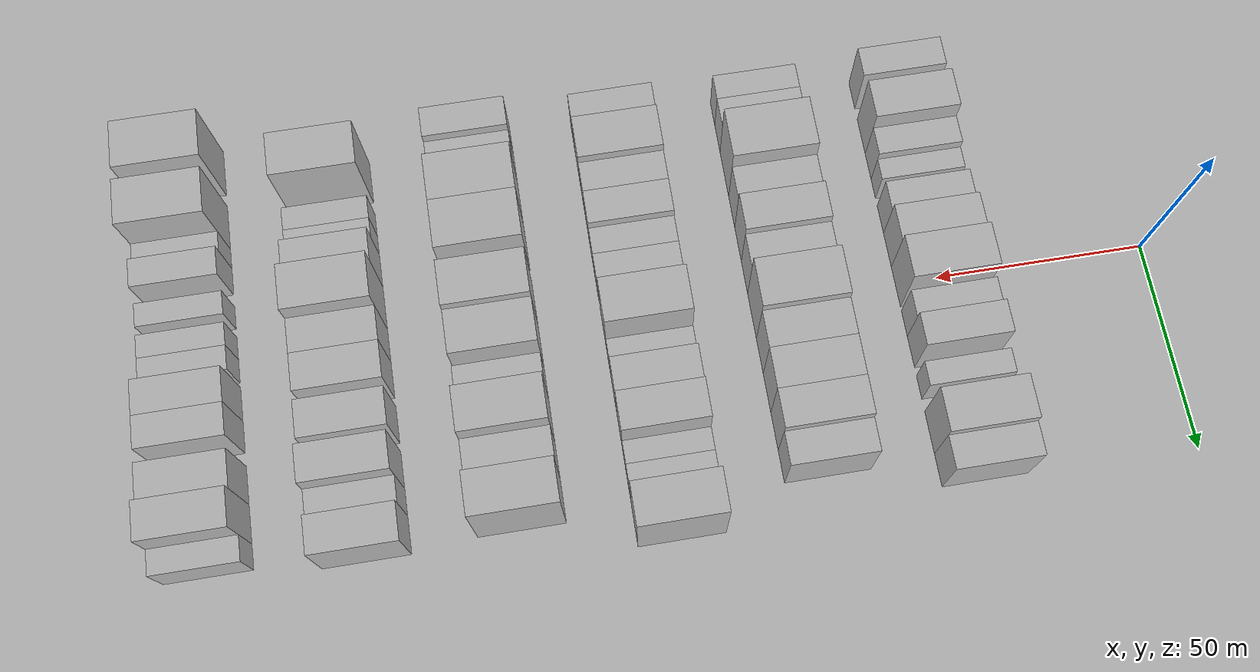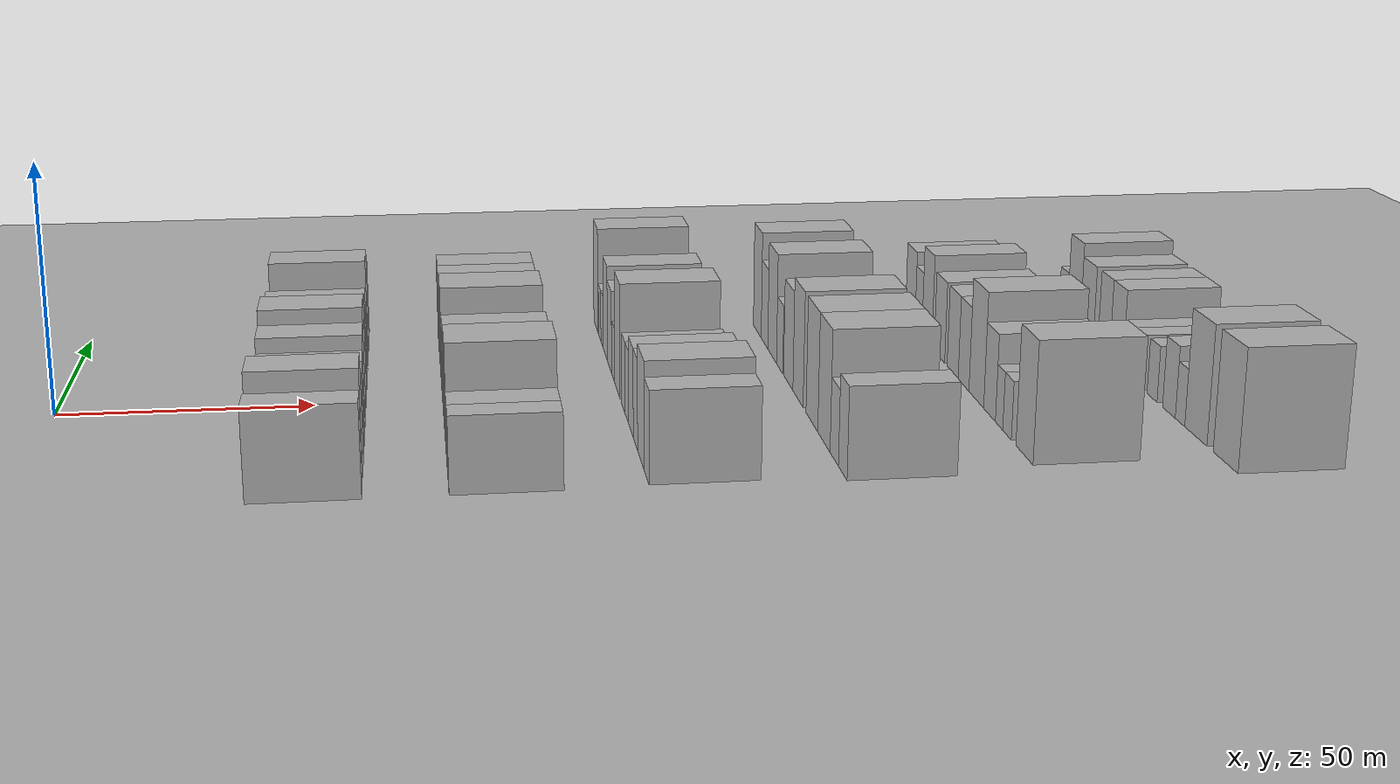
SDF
<sdf version="1.6">
 <world name="default">
  <include><name>ground_plane_1</name><uri>model://HANNAS_ground_plane</uri></include>
  <include>
   <name>ground_plane_2</name>
   <uri>model://HANNAS_ground_plane</uri>
   <pose>100 0 0  0 0 0</pose>
  </include>
  <model name="building_58">
   <static>1</static>
   <pose>50.0000 -50.3721 0 0.000000 0.000000 0.000000</pose>
   <link name="link">
    <pose>0 0 9.00 0 0 0</pose>
    <collision name="collision"><geometry><box><size>20.0000 7.2076 18.0000</size></box></geometry></collision>
    <visual name="visual">
     <cast_shadows>0</cast_shadows>
     <geometry><box><size>20.0000 7.2076 18.0000</size></box></geometry>
     <material>
      <script>
       <uri>model://HANNAS_wall/materials/scripts</uri>
       <uri>model://HANNAS_wall/materials/textures</uri>
       <name>vrc/HANNAS_wall</name>
      </script>
     </material>
    </visual>
   </link>
  </model>
  <model name="building_59">
   <static>1</static>
   <pose>50.0000 -39.0361 0 0.000000 0.000000 0.000000</pose>
   <link name="link">
    <pose>0 0 10.50 0 0 0</pose>
    <collision name="collision"><geometry><box><size>20.0000 9.4644 21.0000</size></box></geometry></collision>
    <visual name="visual">
     <cast_shadows>0</cast_shadows>
     <geometry><box><size>20.0000 9.4644 21.0000</size></box></geometry>
     <material>
      <script>
       <uri>model://HANNAS_wall/materials/scripts</uri>
       <uri>model://HANNAS_wall/materials/textures</uri>
       <name>vrc/HANNAS_wall</name>
      </script>
     </material>
    </visual>
   </link>
  </model>
  <model name="building_60">
   <static>1</static>
   <pose>50.0000 -30.9125 0 0.000000 0.000000 0.000000</pose>
   <link name="link">
    <pose>0 0 7.50 0 0 0</pose>
    <collision name="collision"><geometry><box><size>20.0000 6.7827 15.0000</size></box></geometry></collision>
    <visual name="visual">
     <cast_shadows>0</cast_shadows>
     <geometry><box><size>20.0000 6.7827 15.0000</size></box></geometry>
     <material>
      <script>
       <uri>model://HANNAS_wall/materials/scripts</uri>
       <uri>model://HANNAS_wall/materials/textures</uri>
       <name>vrc/HANNAS_wall</name>
      </script>
     </material>
    </visual>
   </link>
  </model>
  <model name="building_61">
   <static>1</static>
   <pose>50.0000 -24.9444 0 0.000000 0.000000 0.000000</pose>
   <link name="link">
    <pose>0 0 6.00 0 0 0</pose>
    <collision name="collision"><geometry><box><size>20.0000 5.1536 12.0000</size></box></geometry></collision>
    <visual name="visual">
     <cast_shadows>0</cast_shadows>
     <geometry><box><size>20.0000 5.1536 12.0000</size></box></geometry>
     <material>
      <script>
       <uri>model://HANNAS_wall/materials/scripts</uri>
       <uri>model://HANNAS_wall/materials/textures</uri>
       <name>vrc/HANNAS_wall</name>
      </script>
     </material>
    </visual>
   </link>
  </model>
  <model name="building_62">
   <static>1</static>
   <pose>50.0000 -16.7587 0 0.000000 0.000000 0.000000</pose>
   <link name="link">
    <pose>0 0 7.50 0 0 0</pose>
    <collision name="collision"><geometry><box><size>20.0000 7.2178 15.0000</size></box></geometry></collision>
    <visual name="visual">
     <cast_shadows>0</cast_shadows>
     <geometry><box><size>20.0000 7.2178 15.0000</size></box></geometry>
     <material>
      <script>
       <uri>model://HANNAS_wall/materials/scripts</uri>
       <uri>model://HANNAS_wall/materials/textures</uri>
       <name>vrc/HANNAS_wall</name>
      </script>
     </material>
    </visual>
   </link>
  </model>
  <model name="building_63">
   <static>1</static>
   <pose>50.0000 -8.7578 0 0.000000 0.000000 0.000000</pose>
   <link name="link">
    <pose>0 0 9.00 0 0 0</pose>
    <collision name="collision"><geometry><box><size>20.0000 8.7841 18.0000</size></box></geometry></collision>
    <visual name="visual">
     <cast_shadows>0</cast_shadows>
     <geometry><box><size>20.0000 8.7841 18.0000</size></box></geometry>
     <material>
      <script>
       <uri>model://HANNAS_wall/materials/scripts</uri>
       <uri>model://HANNAS_wall/materials/textures</uri>
       <name>vrc/HANNAS_wall</name>
      </script>
     </material>
    </visual>
   </link>
  </model>
  <model name="building_64">
   <static>1</static>
   <pose>50.0000 0.7002 0 0.000000 0.000000 0.000000</pose>
   <link name="link">
    <pose>0 0 10.50 0 0 0</pose>
    <collision name="collision"><geometry><box><size>20.0000 10.1318 21.0000</size></box></geometry></collision>
    <visual name="visual">
     <cast_shadows>0</cast_shadows>
     <geometry><box><size>20.0000 10.1318 21.0000</size></box></geometry>
     <material>
      <script>
       <uri>model://HANNAS_wall/materials/scripts</uri>
       <uri>model://HANNAS_wall/materials/textures</uri>
       <name>vrc/HANNAS_wall</name>
      </script>
     </material>
    </visual>
   </link>
  </model>
  <model name="building_65">
   <static>1</static>
   <pose>50.0000 10.0128 0 0.000000 0.000000 0.000000</pose>
   <link name="link">
    <pose>0 0 7.50 0 0 0</pose>
    <collision name="collision"><geometry><box><size>20.0000 6.4934 15.0000</size></box></geometry></collision>
    <visual name="visual">
     <cast_shadows>0</cast_shadows>
     <geometry><box><size>20.0000 6.4934 15.0000</size></box></geometry>
     <material>
      <script>
       <uri>model://HANNAS_wall/materials/scripts</uri>
       <uri>model://HANNAS_wall/materials/textures</uri>
       <name>vrc/HANNAS_wall</name>
      </script>
     </material>
    </visual>
   </link>
  </model>
  <model name="building_66">
   <static>1</static>
   <pose>50.0000 17.0944 0 0.000000 0.000000 0.000000</pose>
   <link name="link">
    <pose>0 0 9.00 0 0 0</pose>
    <collision name="collision"><geometry><box><size>20.0000 7.6698 18.0000</size></box></geometry></collision>
    <visual name="visual">
     <cast_shadows>0</cast_shadows>
     <geometry><box><size>20.0000 7.6698 18.0000</size></box></geometry>
     <material>
      <script>
       <uri>model://HANNAS_wall/materials/scripts</uri>
       <uri>model://HANNAS_wall/materials/textures</uri>
       <name>vrc/HANNAS_wall</name>
      </script>
     </material>
    </visual>
   </link>
  </model>
  <model name="building_67">
   <static>1</static>
   <pose>50.0000 25.7790 0 0.000000 0.000000 0.000000</pose>
   <link name="link">
    <pose>0 0 6.00 0 0 0</pose>
    <collision name="collision"><geometry><box><size>20.0000 5.6993 12.0000</size></box></geometry></collision>
    <visual name="visual">
     <cast_shadows>0</cast_shadows>
     <geometry><box><size>20.0000 5.6993 12.0000</size></box></geometry>
     <material>
      <script>
       <uri>model://HANNAS_wall/materials/scripts</uri>
       <uri>model://HANNAS_wall/materials/textures</uri>
       <name>vrc/HANNAS_wall</name>
      </script>
     </material>
    </visual>
   </link>
  </model>
  <model name="building_68">
   <static>1</static>
   <pose>50.0000 36.6715 0 0.000000 0.000000 0.000000</pose>
   <link name="link">
    <pose>0 0 10.50 0 0 0</pose>
    <collision name="collision"><geometry><box><size>20.0000 10.0857 21.0000</size></box></geometry></collision>
    <visual name="visual">
     <cast_shadows>0</cast_shadows>
     <geometry><box><size>20.0000 10.0857 21.0000</size></box></geometry>
     <material>
      <script>
       <uri>model://HANNAS_wall/materials/scripts</uri>
       <uri>model://HANNAS_wall/materials/textures</uri>
       <name>vrc/HANNAS_wall</name>
      </script>
     </material>
    </visual>
   </link>
  </model>
  <model name="building_69">
   <static>1</static>
   <pose>50.0000 45.5818 0 0.000000 0.000000 0.000000</pose>
   <link name="link">
    <pose>0 0 9.00 0 0 0</pose>
    <collision name="collision"><geometry><box><size>20.0000 7.7349 18.0000</size></box></geometry></collision>
    <visual name="visual">
     <cast_shadows>0</cast_shadows>
     <geometry><box><size>20.0000 7.7349 18.0000</size></box></geometry>
     <material>
      <script>
       <uri>model://HANNAS_wall/materials/scripts</uri>
       <uri>model://HANNAS_wall/materials/textures</uri>
       <name>vrc/HANNAS_wall</name>
      </script>
     </material>
    </visual>
   </link>
  </model>
  <model name="building_191">
   <static>1</static>
   <pose>85.0000 -50.8751 0 0.000000 0.000000 0.000000</pose>
   <link name="link">
    <pose>0 0 7.50 0 0 0</pose>
    <collision name="collision"><geometry><box><size>20.0000 6.1520 15.0000</size></box></geometry></collision>
    <visual name="visual">
     <cast_shadows>0</cast_shadows>
     <geometry><box><size>20.0000 6.1520 15.0000</size></box></geometry>
     <material>
      <script>
       <uri>model://HANNAS_wall/materials/scripts</uri>
       <uri>model://HANNAS_wall/materials/textures</uri>
       <name>vrc/HANNAS_wall</name>
      </script>
     </material>
    </visual>
   </link>
  </model>
  <model name="building_192">
   <static>1</static>
   <pose>85.0000 -44.1186 0 0.000000 0.000000 0.000000</pose>
   <link name="link">
    <pose>0 0 7.50 0 0 0</pose>
    <collision name="collision"><geometry><box><size>20.0000 7.3609 15.0000</size></box></geometry></collision>
    <visual name="visual">
     <cast_shadows>0</cast_shadows>
     <geometry><box><size>20.0000 7.3609 15.0000</size></box></geometry>
     <material>
      <script>
       <uri>model://HANNAS_wall/materials/scripts</uri>
       <uri>model://HANNAS_wall/materials/textures</uri>
       <name>vrc/HANNAS_wall</name>
      </script>
     </material>
    </visual>
   </link>
  </model>
  <model name="building_193">
   <static>1</static>
   <pose>85.0000 -34.4486 0 0.000000 0.000000 0.000000</pose>
   <link name="link">
    <pose>0 0 12.00 0 0 0</pose>
    <collision name="collision"><geometry><box><size>20.0000 11.9792 24.0000</size></box></geometry></collision>
    <visual name="visual">
     <cast_shadows>0</cast_shadows>
     <geometry><box><size>20.0000 11.9792 24.0000</size></box></geometry>
     <material>
      <script>
       <uri>model://HANNAS_wall/materials/scripts</uri>
       <uri>model://HANNAS_wall/materials/textures</uri>
       <name>vrc/HANNAS_wall</name>
      </script>
     </material>
    </visual>
   </link>
  </model>
  <model name="building_194">
   <static>1</static>
   <pose>85.0000 -24.3883 0 0.000000 0.000000 0.000000</pose>
   <link name="link">
    <pose>0 0 9.00 0 0 0</pose>
    <collision name="collision"><geometry><box><size>20.0000 8.1414 18.0000</size></box></geometry></collision>
    <visual name="visual">
     <cast_shadows>0</cast_shadows>
     <geometry><box><size>20.0000 8.1414 18.0000</size></box></geometry>
     <material>
      <script>
       <uri>model://HANNAS_wall/materials/scripts</uri>
       <uri>model://HANNAS_wall/materials/textures</uri>
       <name>vrc/HANNAS_wall</name>
      </script>
     </material>
    </visual>
   </link>
  </model>
  <model name="building_195">
   <static>1</static>
   <pose>85.0000 -15.9091 0 0.000000 0.000000 0.000000</pose>
   <link name="link">
    <pose>0 0 10.50 0 0 0</pose>
    <collision name="collision"><geometry><box><size>20.0000 8.8168 21.0000</size></box></geometry></collision>
    <visual name="visual">
     <cast_shadows>0</cast_shadows>
     <geometry><box><size>20.0000 8.8168 21.0000</size></box></geometry>
     <material>
      <script>
       <uri>model://HANNAS_wall/materials/scripts</uri>
       <uri>model://HANNAS_wall/materials/textures</uri>
       <name>vrc/HANNAS_wall</name>
      </script>
     </material>
    </visual>
   </link>
  </model>
  <model name="building_196">
   <static>1</static>
   <pose>85.0000 -7.3771 0 0.000000 0.000000 0.000000</pose>
   <link name="link">
    <pose>0 0 9.00 0 0 0</pose>
    <collision name="collision"><geometry><box><size>20.0000 8.2473 18.0000</size></box></geometry></collision>
    <visual name="visual">
     <cast_shadows>0</cast_shadows>
     <geometry><box><size>20.0000 8.2473 18.0000</size></box></geometry>
     <material>
      <script>
       <uri>model://HANNAS_wall/materials/scripts</uri>
       <uri>model://HANNAS_wall/materials/textures</uri>
       <name>vrc/HANNAS_wall</name>
      </script>
     </material>
    </visual>
   </link>
  </model>
  <model name="building_197">
   <static>1</static>
   <pose>85.0000 2.4337 0 0.000000 0.000000 0.000000</pose>
   <link name="link">
    <pose>0 0 12.00 0 0 0</pose>
    <collision name="collision"><geometry><box><size>20.0000 11.3743 24.0000</size></box></geometry></collision>
    <visual name="visual">
     <cast_shadows>0</cast_shadows>
     <geometry><box><size>20.0000 11.3743 24.0000</size></box></geometry>
     <material>
      <script>
       <uri>model://HANNAS_wall/materials/scripts</uri>
       <uri>model://HANNAS_wall/materials/textures</uri>
       <name>vrc/HANNAS_wall</name>
      </script>
     </material>
    </visual>
   </link>
  </model>
  <model name="building_198">
   <static>1</static>
   <pose>85.0000 12.4360 0 0.000000 0.000000 0.000000</pose>
   <link name="link">
    <pose>0 0 10.50 0 0 0</pose>
    <collision name="collision"><geometry><box><size>20.0000 8.6301 21.0000</size></box></geometry></collision>
    <visual name="visual">
     <cast_shadows>0</cast_shadows>
     <geometry><box><size>20.0000 8.6301 21.0000</size></box></geometry>
     <material>
      <script>
       <uri>model://HANNAS_wall/materials/scripts</uri>
       <uri>model://HANNAS_wall/materials/textures</uri>
       <name>vrc/HANNAS_wall</name>
      </script>
     </material>
    </visual>
   </link>
  </model>
  <model name="building_199">
   <static>1</static>
   <pose>85.0000 21.4660 0 0.000000 0.000000 0.000000</pose>
   <link name="link">
    <pose>0 0 10.50 0 0 0</pose>
    <collision name="collision"><geometry><box><size>20.0000 9.4299 21.0000</size></box></geometry></collision>
    <visual name="visual">
     <cast_shadows>0</cast_shadows>
     <geometry><box><size>20.0000 9.4299 21.0000</size></box></geometry>
     <material>
      <script>
       <uri>model://HANNAS_wall/materials/scripts</uri>
       <uri>model://HANNAS_wall/materials/textures</uri>
       <name>vrc/HANNAS_wall</name>
      </script>
     </material>
    </visual>
   </link>
  </model>
  <model name="building_200">
   <static>1</static>
   <pose>85.0000 30.6710 0 0.000000 0.000000 0.000000</pose>
   <link name="link">
    <pose>0 0 10.50 0 0 0</pose>
    <collision name="collision"><geometry><box><size>20.0000 8.9801 21.0000</size></box></geometry></collision>
    <visual name="visual">
     <cast_shadows>0</cast_shadows>
     <geometry><box><size>20.0000 8.9801 21.0000</size></box></geometry>
     <material>
      <script>
       <uri>model://HANNAS_wall/materials/scripts</uri>
       <uri>model://HANNAS_wall/materials/textures</uri>
       <name>vrc/HANNAS_wall</name>
      </script>
     </material>
    </visual>
   </link>
  </model>
  <model name="building_201">
   <static>1</static>
   <pose>85.0000 38.9931 0 0.000000 0.000000 0.000000</pose>
   <link name="link">
    <pose>0 0 9.00 0 0 0</pose>
    <collision name="collision"><geometry><box><size>20.0000 7.6641 18.0000</size></box></geometry></collision>
    <visual name="visual">
     <cast_shadows>0</cast_shadows>
     <geometry><box><size>20.0000 7.6641 18.0000</size></box></geometry>
     <material>
      <script>
       <uri>model://HANNAS_wall/materials/scripts</uri>
       <uri>model://HANNAS_wall/materials/textures</uri>
       <name>vrc/HANNAS_wall</name>
      </script>
     </material>
    </visual>
   </link>
  </model>
  <model name="building_325">
   <static>1</static>
   <pose>120.0000 -49.3584 0 0.000000 0.000000 0.000000</pose>
   <link name="link">
    <pose>0 0 9.00 0 0 0</pose>
    <collision name="collision"><geometry><box><size>20.0000 7.4404 18.0000</size></box></geometry></collision>
    <visual name="visual">
     <cast_shadows>0</cast_shadows>
     <geometry><box><size>20.0000 7.4404 18.0000</size></box></geometry>
     <material>
      <script>
       <uri>model://HANNAS_wall/materials/scripts</uri>
       <uri>model://HANNAS_wall/materials/textures</uri>
       <name>vrc/HANNAS_wall</name>
      </script>
     </material>
    </visual>
   </link>
  </model>
  <model name="building_326">
   <static>1</static>
   <pose>120.0000 -40.4514 0 0.000000 0.000000 0.000000</pose>
   <link name="link">
    <pose>0 0 10.50 0 0 0</pose>
    <collision name="collision"><geometry><box><size>20.0000 10.3736 21.0000</size></box></geometry></collision>
    <visual name="visual">
     <cast_shadows>0</cast_shadows>
     <geometry><box><size>20.0000 10.3736 21.0000</size></box></geometry>
     <material>
      <script>
       <uri>model://HANNAS_wall/materials/scripts</uri>
       <uri>model://HANNAS_wall/materials/textures</uri>
       <name>vrc/HANNAS_wall</name>
      </script>
     </material>
    </visual>
   </link>
  </model>
  <model name="building_327">
   <static>1</static>
   <pose>120.0000 -31.6524 0 0.000000 0.000000 0.000000</pose>
   <link name="link">
    <pose>0 0 9.00 0 0 0</pose>
    <collision name="collision"><geometry><box><size>20.0000 7.2244 18.0000</size></box></geometry></collision>
    <visual name="visual">
     <cast_shadows>0</cast_shadows>
     <geometry><box><size>20.0000 7.2244 18.0000</size></box></geometry>
     <material>
      <script>
       <uri>model://HANNAS_wall/materials/scripts</uri>
       <uri>model://HANNAS_wall/materials/textures</uri>
       <name>vrc/HANNAS_wall</name>
      </script>
     </material>
    </visual>
   </link>
  </model>
  <model name="building_328">
   <static>1</static>
   <pose>120.0000 -23.9916 0 0.000000 0.000000 0.000000</pose>
   <link name="link">
    <pose>0 0 9.00 0 0 0</pose>
    <collision name="collision"><geometry><box><size>20.0000 8.0973 18.0000</size></box></geometry></collision>
    <visual name="visual">
     <cast_shadows>0</cast_shadows>
     <geometry><box><size>20.0000 8.0973 18.0000</size></box></geometry>
     <material>
      <script>
       <uri>model://HANNAS_wall/materials/scripts</uri>
       <uri>model://HANNAS_wall/materials/textures</uri>
       <name>vrc/HANNAS_wall</name>
      </script>
     </material>
    </visual>
   </link>
  </model>
  <model name="building_329">
   <static>1</static>
   <pose>120.0000 -16.7477 0 0.000000 0.000000 0.000000</pose>
   <link name="link">
    <pose>0 0 7.50 0 0 0</pose>
    <collision name="collision"><geometry><box><size>20.0000 6.3905 15.0000</size></box></geometry></collision>
    <visual name="visual">
     <cast_shadows>0</cast_shadows>
     <geometry><box><size>20.0000 6.3905 15.0000</size></box></geometry>
     <material>
      <script>
       <uri>model://HANNAS_wall/materials/scripts</uri>
       <uri>model://HANNAS_wall/materials/textures</uri>
       <name>vrc/HANNAS_wall</name>
      </script>
     </material>
    </visual>
   </link>
  </model>
  <model name="building_330">
   <static>1</static>
   <pose>120.0000 -10.4531 0 0.000000 0.000000 0.000000</pose>
   <link name="link">
    <pose>0 0 7.50 0 0 0</pose>
    <collision name="collision"><geometry><box><size>20.0000 6.1986 15.0000</size></box></geometry></collision>
    <visual name="visual">
     <cast_shadows>0</cast_shadows>
     <geometry><box><size>20.0000 6.1986 15.0000</size></box></geometry>
     <material>
      <script>
       <uri>model://HANNAS_wall/materials/scripts</uri>
       <uri>model://HANNAS_wall/materials/textures</uri>
       <name>vrc/HANNAS_wall</name>
      </script>
     </material>
    </visual>
   </link>
  </model>
  <model name="building_331">
   <static>1</static>
   <pose>120.0000 0.9058 0 0.000000 0.000000 0.000000</pose>
   <link name="link">
    <pose>0 0 12.00 0 0 0</pose>
    <collision name="collision"><geometry><box><size>20.0000 10.5193 24.0000</size></box></geometry></collision>
    <visual name="visual">
     <cast_shadows>0</cast_shadows>
     <geometry><box><size>20.0000 10.5193 24.0000</size></box></geometry>
     <material>
      <script>
       <uri>model://HANNAS_wall/materials/scripts</uri>
       <uri>model://HANNAS_wall/materials/textures</uri>
       <name>vrc/HANNAS_wall</name>
      </script>
     </material>
    </visual>
   </link>
  </model>
  <model name="building_332">
   <static>1</static>
   <pose>120.0000 8.7294 0 0.000000 0.000000 0.000000</pose>
   <link name="link">
    <pose>0 0 6.00 0 0 0</pose>
    <collision name="collision"><geometry><box><size>20.0000 5.1278 12.0000</size></box></geometry></collision>
    <visual name="visual">
     <cast_shadows>0</cast_shadows>
     <geometry><box><size>20.0000 5.1278 12.0000</size></box></geometry>
     <material>
      <script>
       <uri>model://HANNAS_wall/materials/scripts</uri>
       <uri>model://HANNAS_wall/materials/textures</uri>
       <name>vrc/HANNAS_wall</name>
      </script>
     </material>
    </visual>
   </link>
  </model>
  <model name="building_333">
   <static>1</static>
   <pose>120.0000 16.6713 0 0.000000 0.000000 0.000000</pose>
   <link name="link">
    <pose>0 0 9.00 0 0 0</pose>
    <collision name="collision"><geometry><box><size>20.0000 8.7561 18.0000</size></box></geometry></collision>
    <visual name="visual">
     <cast_shadows>0</cast_shadows>
     <geometry><box><size>20.0000 8.7561 18.0000</size></box></geometry>
     <material>
      <script>
       <uri>model://HANNAS_wall/materials/scripts</uri>
       <uri>model://HANNAS_wall/materials/textures</uri>
       <name>vrc/HANNAS_wall</name>
      </script>
     </material>
    </visual>
   </link>
  </model>
  <model name="building_334">
   <static>1</static>
   <pose>120.0000 25.5379 0 0.000000 0.000000 0.000000</pose>
   <link name="link">
    <pose>0 0 10.50 0 0 0</pose>
    <collision name="collision"><geometry><box><size>20.0000 8.9770 21.0000</size></box></geometry></collision>
    <visual name="visual">
     <cast_shadows>0</cast_shadows>
     <geometry><box><size>20.0000 8.9770 21.0000</size></box></geometry>
     <material>
      <script>
       <uri>model://HANNAS_wall/materials/scripts</uri>
       <uri>model://HANNAS_wall/materials/textures</uri>
       <name>vrc/HANNAS_wall</name>
      </script>
     </material>
    </visual>
   </link>
  </model>
  <model name="building_335">
   <static>1</static>
   <pose>120.0000 32.6779 0 0.000000 0.000000 0.000000</pose>
   <link name="link">
    <pose>0 0 6.00 0 0 0</pose>
    <collision name="collision"><geometry><box><size>20.0000 5.3030 12.0000</size></box></geometry></collision>
    <visual name="visual">
     <cast_shadows>0</cast_shadows>
     <geometry><box><size>20.0000 5.3030 12.0000</size></box></geometry>
     <material>
      <script>
       <uri>model://HANNAS_wall/materials/scripts</uri>
       <uri>model://HANNAS_wall/materials/textures</uri>
       <name>vrc/HANNAS_wall</name>
      </script>
     </material>
    </visual>
   </link>
  </model>
  <model name="building_336">
   <static>1</static>
   <pose>120.0000 38.0849 0 0.000000 0.000000 0.000000</pose>
   <link name="link">
    <pose>0 0 6.00 0 0 0</pose>
    <collision name="collision"><geometry><box><size>20.0000 5.5110 12.0000</size></box></geometry></collision>
    <visual name="visual">
     <cast_shadows>0</cast_shadows>
     <geometry><box><size>20.0000 5.5110 12.0000</size></box></geometry>
     <material>
      <script>
       <uri>model://HANNAS_wall/materials/scripts</uri>
       <uri>model://HANNAS_wall/materials/textures</uri>
       <name>vrc/HANNAS_wall</name>
      </script>
     </material>
    </visual>
   </link>
  </model>
  <model name="building_337">
   <static>1</static>
   <pose>120.0000 46.8100 0 0.000000 0.000000 0.000000</pose>
   <link name="link">
    <pose>0 0 12.00 0 0 0</pose>
    <collision name="collision"><geometry><box><size>20.0000 9.9392 24.0000</size></box></geometry></collision>
    <visual name="visual">
     <cast_shadows>0</cast_shadows>
     <geometry><box><size>20.0000 9.9392 24.0000</size></box></geometry>
     <material>
      <script>
       <uri>model://HANNAS_wall/materials/scripts</uri>
       <uri>model://HANNAS_wall/materials/textures</uri>
       <name>vrc/HANNAS_wall</name>
      </script>
     </material>
    </visual>
   </link>
  </model>
  <model name="building_452">
   <static>1</static>
   <pose>155.0000 -51.4732 0 0.000000 0.000000 0.000000</pose>
   <link name="link">
    <pose>0 0 9.00 0 0 0</pose>
    <collision name="collision"><geometry><box><size>20.0000 7.4222 18.0000</size></box></geometry></collision>
    <visual name="visual">
     <cast_shadows>0</cast_shadows>
     <geometry><box><size>20.0000 7.4222 18.0000</size></box></geometry>
     <material>
      <script>
       <uri>model://HANNAS_wall/materials/scripts</uri>
       <uri>model://HANNAS_wall/materials/textures</uri>
       <name>vrc/HANNAS_wall</name>
      </script>
     </material>
    </visual>
   </link>
  </model>
  <model name="building_453">
   <static>1</static>
   <pose>155.0000 -44.0598 0 0.000000 0.000000 0.000000</pose>
   <link name="link">
    <pose>0 0 7.50 0 0 0</pose>
    <collision name="collision"><geometry><box><size>20.0000 7.4045 15.0000</size></box></geometry></collision>
    <visual name="visual">
     <cast_shadows>0</cast_shadows>
     <geometry><box><size>20.0000 7.4045 15.0000</size></box></geometry>
     <material>
      <script>
       <uri>model://HANNAS_wall/materials/scripts</uri>
       <uri>model://HANNAS_wall/materials/textures</uri>
       <name>vrc/HANNAS_wall</name>
      </script>
     </material>
    </visual>
   </link>
  </model>
  <model name="building_454">
   <static>1</static>
   <pose>155.0000 -34.6386 0 0.000000 0.000000 0.000000</pose>
   <link name="link">
    <pose>0 0 12.00 0 0 0</pose>
    <collision name="collision"><geometry><box><size>20.0000 11.4380 24.0000</size></box></geometry></collision>
    <visual name="visual">
     <cast_shadows>0</cast_shadows>
     <geometry><box><size>20.0000 11.4380 24.0000</size></box></geometry>
     <material>
      <script>
       <uri>model://HANNAS_wall/materials/scripts</uri>
       <uri>model://HANNAS_wall/materials/textures</uri>
       <name>vrc/HANNAS_wall</name>
      </script>
     </material>
    </visual>
   </link>
  </model>
  <model name="building_455">
   <static>1</static>
   <pose>155.0000 -23.0958 0 0.000000 0.000000 0.000000</pose>
   <link name="link">
    <pose>0 0 12.00 0 0 0</pose>
    <collision name="collision"><geometry><box><size>20.0000 11.6476 24.0000</size></box></geometry></collision>
    <visual name="visual">
     <cast_shadows>0</cast_shadows>
     <geometry><box><size>20.0000 11.6476 24.0000</size></box></geometry>
     <material>
      <script>
       <uri>model://HANNAS_wall/materials/scripts</uri>
       <uri>model://HANNAS_wall/materials/textures</uri>
       <name>vrc/HANNAS_wall</name>
      </script>
     </material>
    </visual>
   </link>
  </model>
  <model name="building_456">
   <static>1</static>
   <pose>155.0000 -8.8949 0 0.000000 0.000000 0.000000</pose>
   <link name="link">
    <pose>0 0 12.00 0 0 0</pose>
    <collision name="collision"><geometry><box><size>20.0000 10.7541 24.0000</size></box></geometry></collision>
    <visual name="visual">
     <cast_shadows>0</cast_shadows>
     <geometry><box><size>20.0000 10.7541 24.0000</size></box></geometry>
     <material>
      <script>
       <uri>model://HANNAS_wall/materials/scripts</uri>
       <uri>model://HANNAS_wall/materials/textures</uri>
       <name>vrc/HANNAS_wall</name>
      </script>
     </material>
    </visual>
   </link>
  </model>
  <model name="building_457">
   <static>1</static>
   <pose>155.0000 1.6407 0 0.000000 0.000000 0.000000</pose>
   <link name="link">
    <pose>0 0 10.50 0 0 0</pose>
    <collision name="collision"><geometry><box><size>20.0000 10.3171 21.0000</size></box></geometry></collision>
    <visual name="visual">
     <cast_shadows>0</cast_shadows>
     <geometry><box><size>20.0000 10.3171 21.0000</size></box></geometry>
     <material>
      <script>
       <uri>model://HANNAS_wall/materials/scripts</uri>
       <uri>model://HANNAS_wall/materials/textures</uri>
       <name>vrc/HANNAS_wall</name>
      </script>
     </material>
    </visual>
   </link>
  </model>
  <model name="building_458">
   <static>1</static>
   <pose>155.0000 11.4103 0 0.000000 0.000000 0.000000</pose>
   <link name="link">
    <pose>0 0 7.50 0 0 0</pose>
    <collision name="collision"><geometry><box><size>20.0000 7.2220 15.0000</size></box></geometry></collision>
    <visual name="visual">
     <cast_shadows>0</cast_shadows>
     <geometry><box><size>20.0000 7.2220 15.0000</size></box></geometry>
     <material>
      <script>
       <uri>model://HANNAS_wall/materials/scripts</uri>
       <uri>model://HANNAS_wall/materials/textures</uri>
       <name>vrc/HANNAS_wall</name>
      </script>
     </material>
    </visual>
   </link>
  </model>
  <model name="building_459">
   <static>1</static>
   <pose>155.0000 20.2369 0 0.000000 0.000000 0.000000</pose>
   <link name="link">
    <pose>0 0 12.00 0 0 0</pose>
    <collision name="collision"><geometry><box><size>20.0000 10.4314 24.0000</size></box></geometry></collision>
    <visual name="visual">
     <cast_shadows>0</cast_shadows>
     <geometry><box><size>20.0000 10.4314 24.0000</size></box></geometry>
     <material>
      <script>
       <uri>model://HANNAS_wall/materials/scripts</uri>
       <uri>model://HANNAS_wall/materials/textures</uri>
       <name>vrc/HANNAS_wall</name>
      </script>
     </material>
    </visual>
   </link>
  </model>
  <model name="building_460">
   <static>1</static>
   <pose>155.0000 29.6380 0 0.000000 0.000000 0.000000</pose>
   <link name="link">
    <pose>0 0 9.00 0 0 0</pose>
    <collision name="collision"><geometry><box><size>20.0000 8.3707 18.0000</size></box></geometry></collision>
    <visual name="visual">
     <cast_shadows>0</cast_shadows>
     <geometry><box><size>20.0000 8.3707 18.0000</size></box></geometry>
     <material>
      <script>
       <uri>model://HANNAS_wall/materials/scripts</uri>
       <uri>model://HANNAS_wall/materials/textures</uri>
       <name>vrc/HANNAS_wall</name>
      </script>
     </material>
    </visual>
   </link>
  </model>
  <model name="building_461">
   <static>1</static>
   <pose>155.0000 38.8650 0 0.000000 0.000000 0.000000</pose>
   <link name="link">
    <pose>0 0 12.00 0 0 0</pose>
    <collision name="collision"><geometry><box><size>20.0000 10.0834 24.0000</size></box></geometry></collision>
    <visual name="visual">
     <cast_shadows>0</cast_shadows>
     <geometry><box><size>20.0000 10.0834 24.0000</size></box></geometry>
     <material>
      <script>
       <uri>model://HANNAS_wall/materials/scripts</uri>
       <uri>model://HANNAS_wall/materials/textures</uri>
       <name>vrc/HANNAS_wall</name>
      </script>
     </material>
    </visual>
   </link>
  </model>
  <model name="building_577">
   <static>1</static>
   <pose>190.0000 -46.0775 0 0.000000 0.000000 0.000000</pose>
   <link name="link">
    <pose>0 0 12.00 0 0 0</pose>
    <collision name="collision"><geometry><box><size>20.0000 10.6212 24.0000</size></box></geometry></collision>
    <visual name="visual">
     <cast_shadows>0</cast_shadows>
     <geometry><box><size>20.0000 10.6212 24.0000</size></box></geometry>
     <material>
      <script>
       <uri>model://HANNAS_wall/materials/scripts</uri>
       <uri>model://HANNAS_wall/materials/textures</uri>
       <name>vrc/HANNAS_wall</name>
      </script>
     </material>
    </visual>
   </link>
  </model>
  <model name="building_578">
   <static>1</static>
   <pose>190.0000 -34.9429 0 0.000000 0.000000 0.000000</pose>
   <link name="link">
    <pose>0 0 6.00 0 0 0</pose>
    <collision name="collision"><geometry><box><size>20.0000 5.6479 12.0000</size></box></geometry></collision>
    <visual name="visual">
     <cast_shadows>0</cast_shadows>
     <geometry><box><size>20.0000 5.6479 12.0000</size></box></geometry>
     <material>
      <script>
       <uri>model://HANNAS_wall/materials/scripts</uri>
       <uri>model://HANNAS_wall/materials/textures</uri>
       <name>vrc/HANNAS_wall</name>
      </script>
     </material>
    </visual>
   </link>
  </model>
  <model name="building_579">
   <static>1</static>
   <pose>190.0000 -29.6499 0 0.000000 0.000000 0.000000</pose>
   <link name="link">
    <pose>0 0 6.00 0 0 0</pose>
    <collision name="collision"><geometry><box><size>20.0000 4.9382 12.0000</size></box></geometry></collision>
    <visual name="visual">
     <cast_shadows>0</cast_shadows>
     <geometry><box><size>20.0000 4.9382 12.0000</size></box></geometry>
     <material>
      <script>
       <uri>model://HANNAS_wall/materials/scripts</uri>
       <uri>model://HANNAS_wall/materials/textures</uri>
       <name>vrc/HANNAS_wall</name>
      </script>
     </material>
    </visual>
   </link>
  </model>
  <model name="building_580">
   <static>1</static>
   <pose>190.0000 -23.0777 0 0.000000 0.000000 0.000000</pose>
   <link name="link">
    <pose>0 0 9.00 0 0 0</pose>
    <collision name="collision"><geometry><box><size>20.0000 8.2062 18.0000</size></box></geometry></collision>
    <visual name="visual">
     <cast_shadows>0</cast_shadows>
     <geometry><box><size>20.0000 8.2062 18.0000</size></box></geometry>
     <material>
      <script>
       <uri>model://HANNAS_wall/materials/scripts</uri>
       <uri>model://HANNAS_wall/materials/textures</uri>
       <name>vrc/HANNAS_wall</name>
      </script>
     </material>
    </visual>
   </link>
  </model>
  <model name="building_581">
   <static>1</static>
   <pose>190.0000 -13.5890 0 0.000000 0.000000 0.000000</pose>
   <link name="link">
    <pose>0 0 12.00 0 0 0</pose>
    <collision name="collision"><geometry><box><size>20.0000 10.7712 24.0000</size></box></geometry></collision>
    <visual name="visual">
     <cast_shadows>0</cast_shadows>
     <geometry><box><size>20.0000 10.7712 24.0000</size></box></geometry>
     <material>
      <script>
       <uri>model://HANNAS_wall/materials/scripts</uri>
       <uri>model://HANNAS_wall/materials/textures</uri>
       <name>vrc/HANNAS_wall</name>
      </script>
     </material>
    </visual>
   </link>
  </model>
  <model name="building_582">
   <static>1</static>
   <pose>190.0000 -4.0961 0 0.000000 0.000000 0.000000</pose>
   <link name="link">
    <pose>0 0 9.00 0 0 0</pose>
    <collision name="collision"><geometry><box><size>20.0000 8.2144 18.0000</size></box></geometry></collision>
    <visual name="visual">
     <cast_shadows>0</cast_shadows>
     <geometry><box><size>20.0000 8.2144 18.0000</size></box></geometry>
     <material>
      <script>
       <uri>model://HANNAS_wall/materials/scripts</uri>
       <uri>model://HANNAS_wall/materials/textures</uri>
       <name>vrc/HANNAS_wall</name>
      </script>
     </material>
    </visual>
   </link>
  </model>
  <model name="building_583">
   <static>1</static>
   <pose>190.0000 4.3991 0 0.000000 0.000000 0.000000</pose>
   <link name="link">
    <pose>0 0 9.00 0 0 0</pose>
    <collision name="collision"><geometry><box><size>20.0000 8.7759 18.0000</size></box></geometry></collision>
    <visual name="visual">
     <cast_shadows>0</cast_shadows>
     <geometry><box><size>20.0000 8.7759 18.0000</size></box></geometry>
     <material>
      <script>
       <uri>model://HANNAS_wall/materials/scripts</uri>
       <uri>model://HANNAS_wall/materials/textures</uri>
       <name>vrc/HANNAS_wall</name>
      </script>
     </material>
    </visual>
   </link>
  </model>
  <model name="building_584">
   <static>1</static>
   <pose>190.0000 15.1913 0 0.000000 0.000000 0.000000</pose>
   <link name="link">
    <pose>0 0 9.00 0 0 0</pose>
    <collision name="collision"><geometry><box><size>20.0000 8.8085 18.0000</size></box></geometry></collision>
    <visual name="visual">
     <cast_shadows>0</cast_shadows>
     <geometry><box><size>20.0000 8.8085 18.0000</size></box></geometry>
     <material>
      <script>
       <uri>model://HANNAS_wall/materials/scripts</uri>
       <uri>model://HANNAS_wall/materials/textures</uri>
       <name>vrc/HANNAS_wall</name>
      </script>
     </material>
    </visual>
   </link>
  </model>
  <model name="building_585">
   <static>1</static>
   <pose>190.0000 25.9215 0 0.000000 0.000000 0.000000</pose>
   <link name="link">
    <pose>0 0 10.50 0 0 0</pose>
    <collision name="collision"><geometry><box><size>20.0000 8.6519 21.0000</size></box></geometry></collision>
    <visual name="visual">
     <cast_shadows>0</cast_shadows>
     <geometry><box><size>20.0000 8.6519 21.0000</size></box></geometry>
     <material>
      <script>
       <uri>model://HANNAS_wall/materials/scripts</uri>
       <uri>model://HANNAS_wall/materials/textures</uri>
       <name>vrc/HANNAS_wall</name>
      </script>
     </material>
    </visual>
   </link>
  </model>
  <model name="building_586">
   <static>1</static>
   <pose>190.0000 33.3990 0 0.000000 0.000000 0.000000</pose>
   <link name="link">
    <pose>0 0 7.50 0 0 0</pose>
    <collision name="collision"><geometry><box><size>20.0000 6.3030 15.0000</size></box></geometry></collision>
    <visual name="visual">
     <cast_shadows>0</cast_shadows>
     <geometry><box><size>20.0000 6.3030 15.0000</size></box></geometry>
     <material>
      <script>
       <uri>model://HANNAS_wall/materials/scripts</uri>
       <uri>model://HANNAS_wall/materials/textures</uri>
       <name>vrc/HANNAS_wall</name>
      </script>
     </material>
    </visual>
   </link>
  </model>
  <model name="building_587">
   <static>1</static>
   <pose>190.0000 40.9383 0 0.000000 0.000000 0.000000</pose>
   <link name="link">
    <pose>0 0 9.00 0 0 0</pose>
    <collision name="collision"><geometry><box><size>20.0000 8.7757 18.0000</size></box></geometry></collision>
    <visual name="visual">
     <cast_shadows>0</cast_shadows>
     <geometry><box><size>20.0000 8.7757 18.0000</size></box></geometry>
     <material>
      <script>
       <uri>model://HANNAS_wall/materials/scripts</uri>
       <uri>model://HANNAS_wall/materials/textures</uri>
       <name>vrc/HANNAS_wall</name>
      </script>
     </material>
    </visual>
   </link>
  </model>
  <model name="building_701">
   <static>1</static>
   <pose>225.0000 -54.2986 0 0.000000 0.000000 0.000000</pose>
   <link name="link">
    <pose>0 0 12.00 0 0 0</pose>
    <collision name="collision"><geometry><box><size>20.0000 11.6584 24.0000</size></box></geometry></collision>
    <visual name="visual">
     <cast_shadows>0</cast_shadows>
     <geometry><box><size>20.0000 11.6584 24.0000</size></box></geometry>
     <material>
      <script>
       <uri>model://HANNAS_wall/materials/scripts</uri>
       <uri>model://HANNAS_wall/materials/textures</uri>
       <name>vrc/HANNAS_wall</name>
      </script>
     </material>
    </visual>
   </link>
  </model>
  <model name="building_702">
   <static>1</static>
   <pose>225.0000 -39.9014 0 0.000000 0.000000 0.000000</pose>
   <link name="link">
    <pose>0 0 12.00 0 0 0</pose>
    <collision name="collision"><geometry><box><size>20.0000 11.1361 24.0000</size></box></geometry></collision>
    <visual name="visual">
     <cast_shadows>0</cast_shadows>
     <geometry><box><size>20.0000 11.1361 24.0000</size></box></geometry>
     <material>
      <script>
       <uri>model://HANNAS_wall/materials/scripts</uri>
       <uri>model://HANNAS_wall/materials/textures</uri>
       <name>vrc/HANNAS_wall</name>
      </script>
     </material>
    </visual>
   </link>
  </model>
  <model name="building_703">
   <static>1</static>
   <pose>225.0000 -31.8553 0 0.000000 0.000000 0.000000</pose>
   <link name="link">
    <pose>0 0 6.00 0 0 0</pose>
    <collision name="collision"><geometry><box><size>20.0000 4.9560 12.0000</size></box></geometry></collision>
    <visual name="visual">
     <cast_shadows>0</cast_shadows>
     <geometry><box><size>20.0000 4.9560 12.0000</size></box></geometry>
     <material>
      <script>
       <uri>model://HANNAS_wall/materials/scripts</uri>
       <uri>model://HANNAS_wall/materials/textures</uri>
       <name>vrc/HANNAS_wall</name>
      </script>
     </material>
    </visual>
   </link>
  </model>
  <model name="building_704">
   <static>1</static>
   <pose>225.0000 -25.9446 0 0.000000 0.000000 0.000000</pose>
   <link name="link">
    <pose>0 0 7.50 0 0 0</pose>
    <collision name="collision"><geometry><box><size>20.0000 6.8652 15.0000</size></box></geometry></collision>
    <visual name="visual">
     <cast_shadows>0</cast_shadows>
     <geometry><box><size>20.0000 6.8652 15.0000</size></box></geometry>
     <material>
      <script>
       <uri>model://HANNAS_wall/materials/scripts</uri>
       <uri>model://HANNAS_wall/materials/textures</uri>
       <name>vrc/HANNAS_wall</name>
      </script>
     </material>
    </visual>
   </link>
  </model>
  <model name="building_705">
   <static>1</static>
   <pose>225.0000 -16.6929 0 0.000000 0.000000 0.000000</pose>
   <link name="link">
    <pose>0 0 6.00 0 0 0</pose>
    <collision name="collision"><geometry><box><size>20.0000 5.6383 12.0000</size></box></geometry></collision>
    <visual name="visual">
     <cast_shadows>0</cast_shadows>
     <geometry><box><size>20.0000 5.6383 12.0000</size></box></geometry>
     <material>
      <script>
       <uri>model://HANNAS_wall/materials/scripts</uri>
       <uri>model://HANNAS_wall/materials/textures</uri>
       <name>vrc/HANNAS_wall</name>
      </script>
     </material>
    </visual>
   </link>
  </model>
  <model name="building_706">
   <static>1</static>
   <pose>225.0000 -9.1032 0 0.000000 0.000000 0.000000</pose>
   <link name="link">
    <pose>0 0 6.00 0 0 0</pose>
    <collision name="collision"><geometry><box><size>20.0000 5.5411 12.0000</size></box></geometry></collision>
    <visual name="visual">
     <cast_shadows>0</cast_shadows>
     <geometry><box><size>20.0000 5.5411 12.0000</size></box></geometry>
     <material>
      <script>
       <uri>model://HANNAS_wall/materials/scripts</uri>
       <uri>model://HANNAS_wall/materials/textures</uri>
       <name>vrc/HANNAS_wall</name>
      </script>
     </material>
    </visual>
   </link>
  </model>
  <model name="building_707">
   <static>1</static>
   <pose>225.0000 -3.4338 0 0.000000 0.000000 0.000000</pose>
   <link name="link">
    <pose>0 0 6.00 0 0 0</pose>
    <collision name="collision"><geometry><box><size>20.0000 5.7976 12.0000</size></box></geometry></collision>
    <visual name="visual">
     <cast_shadows>0</cast_shadows>
     <geometry><box><size>20.0000 5.7976 12.0000</size></box></geometry>
     <material>
      <script>
       <uri>model://HANNAS_wall/materials/scripts</uri>
       <uri>model://HANNAS_wall/materials/textures</uri>
       <name>vrc/HANNAS_wall</name>
      </script>
     </material>
    </visual>
   </link>
  </model>
  <model name="building_708">
   <static>1</static>
   <pose>225.0000 4.5904 0 0.000000 0.000000 0.000000</pose>
   <link name="link">
    <pose>0 0 9.00 0 0 0</pose>
    <collision name="collision"><geometry><box><size>20.0000 8.2509 18.0000</size></box></geometry></collision>
    <visual name="visual">
     <cast_shadows>0</cast_shadows>
     <geometry><box><size>20.0000 8.2509 18.0000</size></box></geometry>
     <material>
      <script>
       <uri>model://HANNAS_wall/materials/scripts</uri>
       <uri>model://HANNAS_wall/materials/textures</uri>
       <name>vrc/HANNAS_wall</name>
      </script>
     </material>
    </visual>
   </link>
  </model>
  <model name="building_709">
   <static>1</static>
   <pose>225.0000 12.5152 0 0.000000 0.000000 0.000000</pose>
   <link name="link">
    <pose>0 0 9.00 0 0 0</pose>
    <collision name="collision"><geometry><box><size>20.0000 7.5987 18.0000</size></box></geometry></collision>
    <visual name="visual">
     <cast_shadows>0</cast_shadows>
     <geometry><box><size>20.0000 7.5987 18.0000</size></box></geometry>
     <material>
      <script>
       <uri>model://HANNAS_wall/materials/scripts</uri>
       <uri>model://HANNAS_wall/materials/textures</uri>
       <name>vrc/HANNAS_wall</name>
      </script>
     </material>
    </visual>
   </link>
  </model>
  <model name="building_710">
   <static>1</static>
   <pose>225.0000 23.7833 0 0.000000 0.000000 0.000000</pose>
   <link name="link">
    <pose>0 0 9.00 0 0 0</pose>
    <collision name="collision"><geometry><box><size>20.0000 8.9374 18.0000</size></box></geometry></collision>
    <visual name="visual">
     <cast_shadows>0</cast_shadows>
     <geometry><box><size>20.0000 8.9374 18.0000</size></box></geometry>
     <material>
      <script>
       <uri>model://HANNAS_wall/materials/scripts</uri>
       <uri>model://HANNAS_wall/materials/textures</uri>
       <name>vrc/HANNAS_wall</name>
      </script>
     </material>
    </visual>
   </link>
  </model>
  <model name="building_711">
   <static>1</static>
   <pose>225.0000 32.7406 0 0.000000 0.000000 0.000000</pose>
   <link name="link">
    <pose>0 0 10.50 0 0 0</pose>
    <collision name="collision"><geometry><box><size>20.0000 8.9771 21.0000</size></box></geometry></collision>
    <visual name="visual">
     <cast_shadows>0</cast_shadows>
     <geometry><box><size>20.0000 8.9771 21.0000</size></box></geometry>
     <material>
      <script>
       <uri>model://HANNAS_wall/materials/scripts</uri>
       <uri>model://HANNAS_wall/materials/textures</uri>
       <name>vrc/HANNAS_wall</name>
      </script>
     </material>
    </visual>
   </link>
  </model>
  <model name="building_712">
   <static>1</static>
   <pose>225.0000 40.1749 0 0.000000 0.000000 0.000000</pose>
   <link name="link">
    <pose>0 0 6.00 0 0 0</pose>
    <collision name="collision"><geometry><box><size>20.0000 5.8915 12.0000</size></box></geometry></collision>
    <visual name="visual">
     <cast_shadows>0</cast_shadows>
     <geometry><box><size>20.0000 5.8915 12.0000</size></box></geometry>
     <material>
      <script>
       <uri>model://HANNAS_wall/materials/scripts</uri>
       <uri>model://HANNAS_wall/materials/textures</uri>
       <name>vrc/HANNAS_wall</name>
      </script>
     </material>
    </visual>
   </link>
  </model>
 </world>
</sdf>
